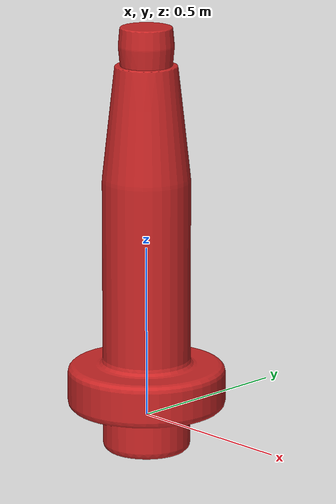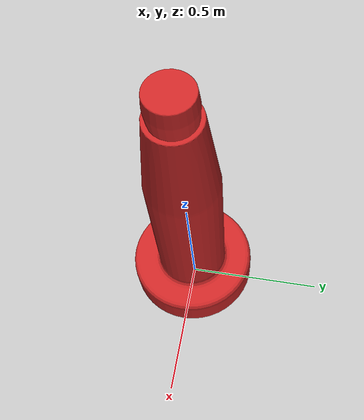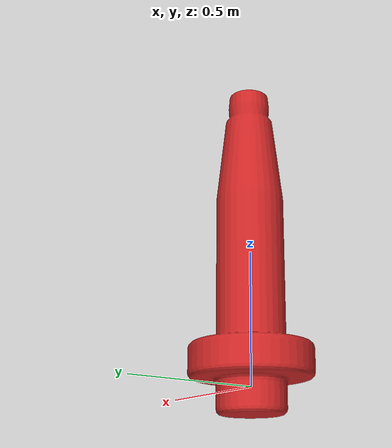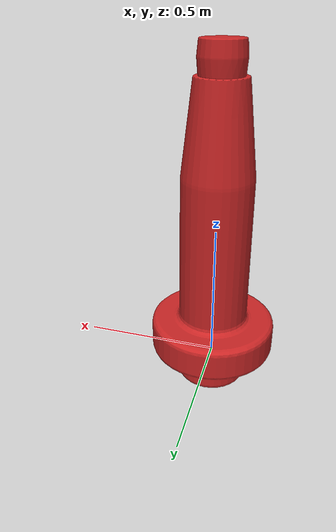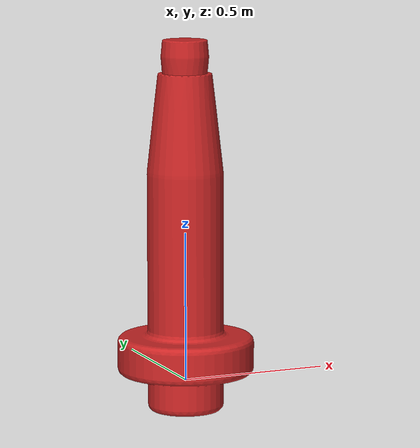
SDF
<?xml version="1.0"?>
<sdf version="1.6">
  <model name="Red Marker">
    <static>true</static>
    <link name="robot_link">
      <collision name="body_collision">
        <geometry>
          <box>
            <size>1 1 1</size>
          </box>
        </geometry>
      </collision>
      <visual name="wheel1_visual">
        <pose>0 0 -0.1 1.57 0 0</pose>
        <geometry>
          <mesh>
            <uri>model://marker_buoy_port/meshes/sur-Mark_marker.stl</uri>
            <scale>0.001 0.001 0.001</scale>
          </mesh>
        </geometry>
        <material>
          <script>
              <uri>file://media/materials/scripts/gazebo.material</uri>
              <name>Gazebo/Red</name>
          </script>
        </material>
      </visual>
    </link>
  </model>
</sdf>
